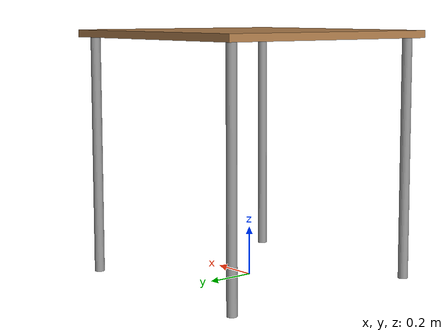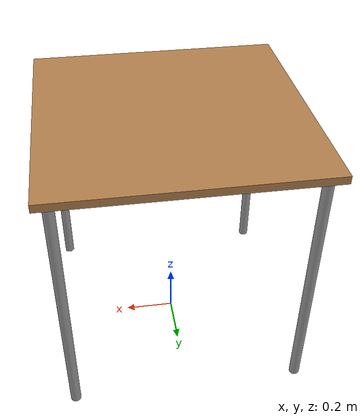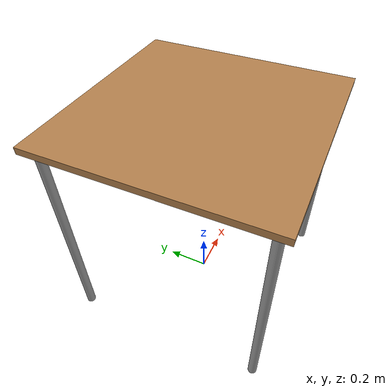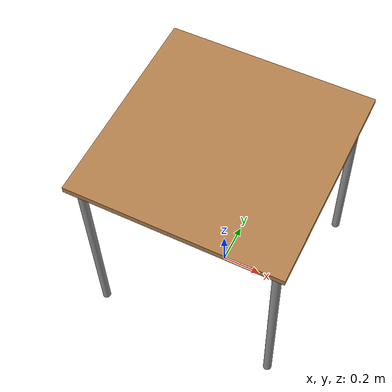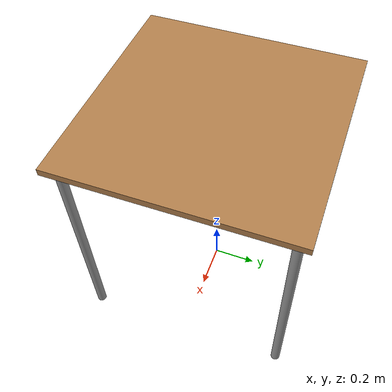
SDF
<?xml version="1.0" ?>
<sdf version="1.5">
  <model name="custom_table">
    <static>true</static>
    <link name="link">
      <!-- Table Surface -->
      <collision name="surface">
        <pose>0 0 1.0 0 0 0</pose>
        <geometry>
          <box>
            <!-- 1m x 1m table surface -->
            <size>1.0 1.0 0.03</size>
          </box>
        </geometry>
        <surface>
          <friction>
            <ode>
              <mu>0.6</mu>
              <mu2>0.6</mu2>
            </ode>
          </friction>
        </surface>
      </collision>

      <visual name="visual1">
        <pose>0 0 1.0 0 0 0</pose>
        <geometry>
          <box>
            <!-- Match the collision dimensions - 1m x 1m -->
            <size>1.0 1.0 0.03</size>
          </box>
        </geometry>
        <material>
          <script>
            <uri>file://media/materials/scripts/gazebo.material</uri>
            <name>Gazebo/Wood</name>
          </script>
        </material>
      </visual>

      <!-- Table Legs - Positioned for 1m x 1m table -->
      <!-- Front left leg -->
      <collision name="front_left_leg">
        <pose>0.45 0.45 0.5 0 0 0</pose>
        <geometry>
          <cylinder>
            <radius>0.02</radius>
            <length>1.0</length>
          </cylinder>
        </geometry>
      </collision>
      <visual name="front_left_leg">
        <pose>0.45 0.45 0.5 0 0 0</pose>
        <geometry>
          <cylinder>
            <radius>0.02</radius>
            <length>1.0</length>
          </cylinder>
        </geometry>
        <material>
          <script>
            <uri>file://media/materials/scripts/gazebo.material</uri>
            <name>Gazebo/Grey</name>
          </script>
        </material>
      </visual>

      <!-- Front right leg -->
      <collision name="front_right_leg">
        <pose>0.45 -0.45 0.5 0 0 0</pose>
      <geometry>
          <cylinder>
            <radius>0.02</radius>
            <length>1.0</length>
          </cylinder>
        </geometry>
      </collision>
      <visual name="front_right_leg">
        <pose>0.45 -0.45 0.5 0 0 0</pose>
        <geometry>
          <cylinder>
            <radius>0.02</radius>
            <length>1.0</length>
          </cylinder>
        </geometry>
        <material>
          <script>
            <uri>file://media/materials/scripts/gazebo.material</uri>
            <name>Gazebo/Grey</name>
          </script>
        </material>
      </visual>

      <!-- Back right leg -->
      <collision name="back_right_leg">
        <pose>-0.45 -0.45 0.5 0 0 0</pose>
        <geometry>
          <cylinder>
            <radius>0.02</radius>
            <length>1.0</length>
          </cylinder>
        </geometry>
      </collision>
      <visual name="back_right_leg">
        <pose>-0.45 -0.45 0.5 0 0 0</pose>
        <geometry>
          <cylinder>
            <radius>0.02</radius>
            <length>1.0</length>
          </cylinder>
        </geometry>
        <material>
          <script>
            <uri>file://media/materials/scripts/gazebo.material</uri>
            <name>Gazebo/Grey</name>
          </script>
        </material>
      </visual>

      <!-- Back left leg -->
      <collision name="back_left_leg">
        <pose>-0.45 0.45 0.5 0 0 0</pose>
        <geometry>
          <cylinder>
            <radius>0.02</radius>
            <length>1.0</length>
          </cylinder>
        </geometry>
      </collision>
      <visual name="back_left_leg">
        <pose>-0.45 0.45 0.5 0 0 0</pose>
        <geometry>
          <cylinder>
            <radius>0.02</radius>
            <length>1.0</length>
          </cylinder>
        </geometry>
        <material>
          <script>
            <uri>file://media/materials/scripts/gazebo.material</uri>
            <name>Gazebo/Grey</name>
          </script>
        </material>
      </visual>
    </link>
  </model>
</sdf>
